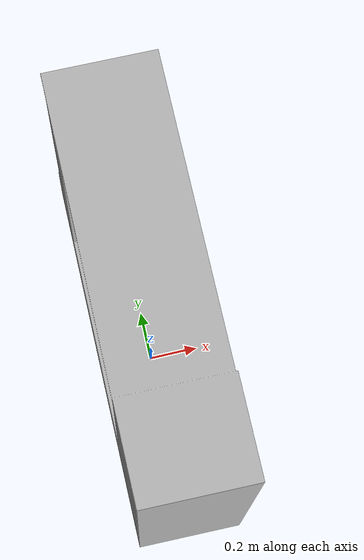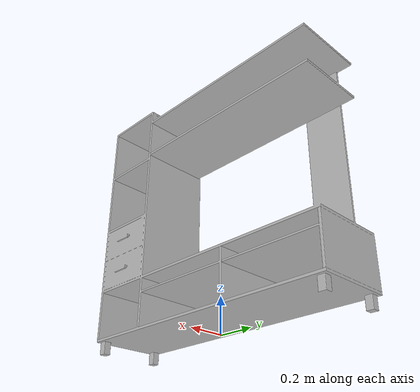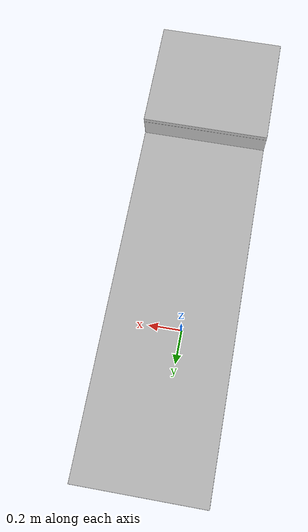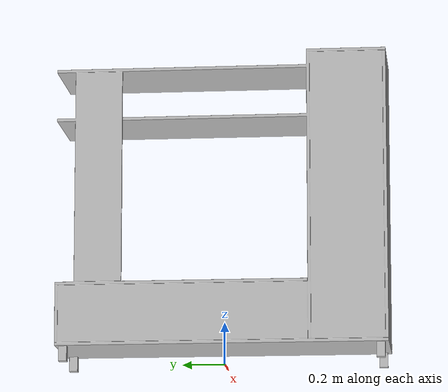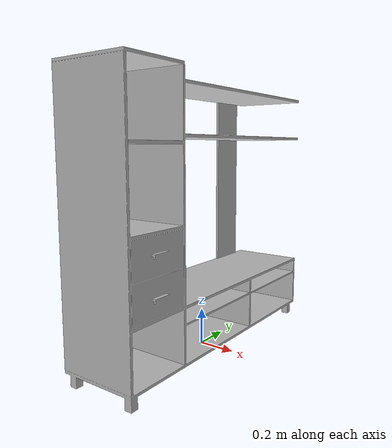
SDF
<?xml version='1.0'?>
<sdf version='1.4'>
  <model name='570'>
    <pose>0 0 0 0 0 0</pose>
    <static>true</static>
    <link name='link'>
      <collision name='collision'>
        <pose>0 0 0 0 0 0</pose>
        <geometry>
          <box>
            <size>0.439998 1.56 2</size>
          </box>
        </geometry>
      </collision>
      <visual name='visual'>
        <pose>0 0 0 0 0 0</pose>
        <geometry>
          <mesh><uri>model://570/570.dae</uri></mesh>
        </geometry>
      </visual>
    </link>
  </model>
</sdf>
